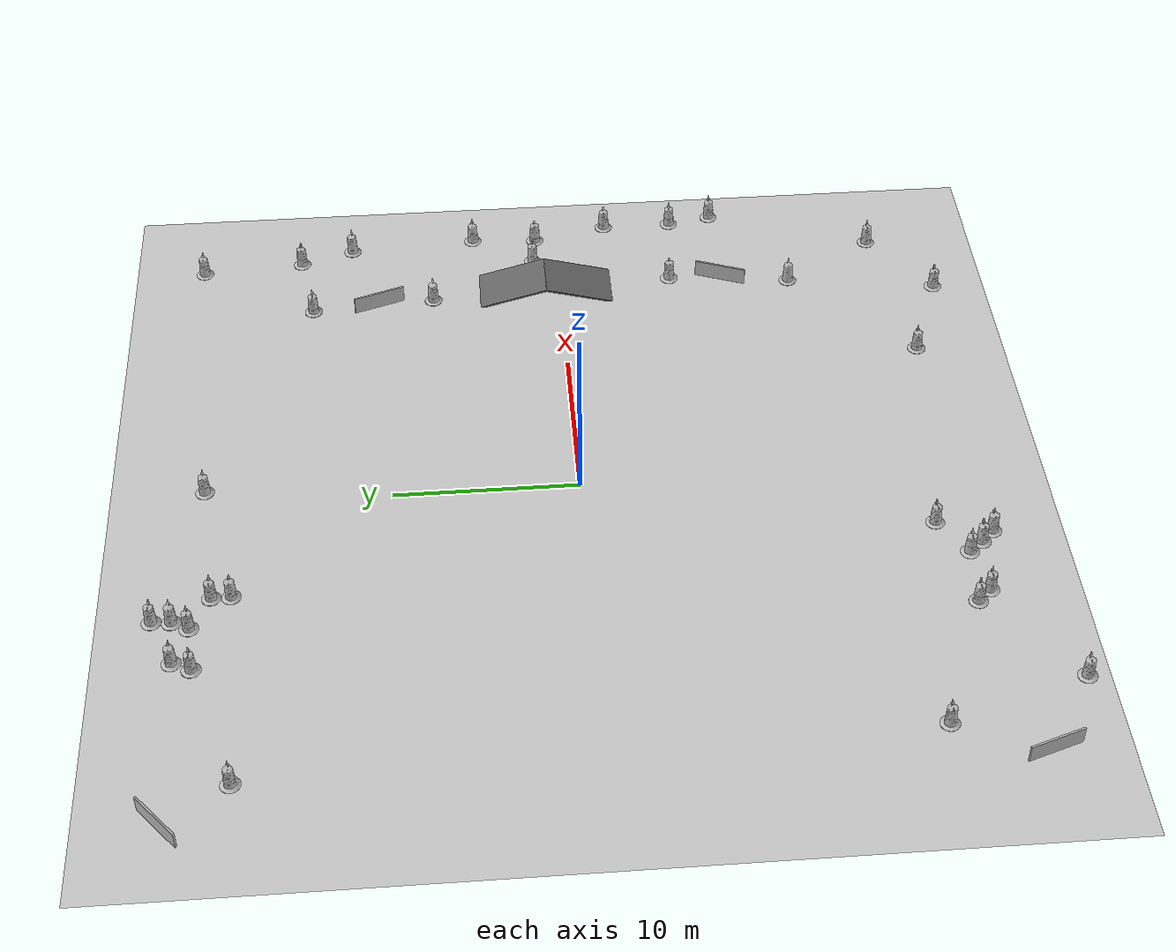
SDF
<sdf version="1.7">
 <world name="default">
  <model name="igvc_basic_ground">
   <static>1</static>
   <link name="link">
    <collision name="collision">
     <geometry><plane><normal>0 0 1</normal><size>50 50</size></plane></geometry>
     <surface><friction><ode><mu>100</mu><mu2>50</mu2></ode></friction></surface>
    </collision>
    <visual name="visual">
     <cast_shadows>0</cast_shadows>
     <geometry><plane><normal>0 0 1</normal><size>50 50</size></plane></geometry>
     <material>
      <script>
       <uri>model://igvc_basic_ground/materials/scripts</uri>
       <uri>model://igvc_basic_ground/materials/textures</uri>
       <name>igvc_pavement/Image</name>
      </script>
     </material>
    </visual>
    <velocity_decay><linear>0</linear><angular>0</angular></velocity_decay>
   </link>
  </model>
  <light name="sun" type="directional">
   <pose>0 0 10 0 -0 0</pose>
   <diffuse>0.8 0.8 0.8 1</diffuse>
   <specular>0.2 0.2 0.2 1</specular>
   <attenuation>
    <range>1000</range>
    <constant>0.9</constant>
    <linear>0.01</linear>
    <quadratic>0.001</quadratic>
   </attenuation>
   <direction>-0.5 0.1 -0.9</direction>
   <spot><inner_angle>0</inner_angle><outer_angle>0</outer_angle><falloff>0</falloff></spot>
  </light>
  <physics name="default_physics" default="0" type="ode">
   <max_step_size>0.001</max_step_size>
   <real_time_factor>1</real_time_factor>
   <real_time_update_rate>1000</real_time_update_rate>
  </physics>
  <scene><ambient>1 1 1 1</ambient><background>0.7 0.7 0.7 1</background><shadows>1</shadows></scene>
  <spherical_coordinates>
   <surface_model>EARTH_WGS84</surface_model>
   <latitude_deg>0</latitude_deg>
   <longitude_deg>0</longitude_deg>
   <elevation>0</elevation>
   <heading_deg>0</heading_deg>
  </spherical_coordinates>
  <model name="Construction Barrel_1">
   <link name="link">
    <inertial>
     <pose>0 0 0.4 0 -0 0</pose>
     <mass>500</mass>
     <inertia><ixx>51.2096</ixx><iyy>51.2096</iyy><izz>25</izz><ixy>0</ixy><ixz>0</ixz><iyz>0</iyz></inertia>
    </inertial>
    <collision name="collision">
     <geometry><mesh><uri>model://construction_barrel/meshes/construction_barrel.dae</uri></mesh></geometry>
    </collision>
    <visual name="visual">
     <geometry><mesh><uri>model://construction_barrel/meshes/construction_barrel.dae</uri></mesh></geometry>
    </visual>
    <velocity_decay><linear>0</linear><angular>0</angular></velocity_decay>
   </link>
   <pose>-17.75 -16.5 -2e-06 7e-06 -4e-06 -0.003021</pose>
   <static>0</static>
  </model>
  <model name="Construction Barrel_2">
   <link name="link">
    <inertial>
     <pose>0 0 0.4 0 -0 0</pose>
     <mass>500</mass>
     <inertia><ixx>51.2096</ixx><iyy>51.2096</iyy><izz>25</izz><ixy>0</ixy><ixz>0</ixz><iyz>0</iyz></inertia>
    </inertial>
    <collision name="collision">
     <geometry><mesh><uri>model://construction_barrel/meshes/construction_barrel.dae</uri></mesh></geometry>
    </collision>
    <visual name="visual">
     <geometry><mesh><uri>model://construction_barrel/meshes/construction_barrel.dae</uri></mesh></geometry>
    </visual>
    <velocity_decay><linear>0</linear><angular>0</angular></velocity_decay>
   </link>
   <pose>-15.3135 -23.8097 -1e-06 -3e-06 -1e-06 -0.002807</pose>
   <static>0</static>
  </model>
  <model name="Construction Barrel_3">
   <link name="link">
    <inertial>
     <pose>0 0 0.4 0 -0 0</pose>
     <mass>500</mass>
     <inertia><ixx>51.2096</ixx><iyy>51.2096</iyy><izz>25</izz><ixy>0</ixy><ixz>0</ixz><iyz>0</iyz></inertia>
    </inertial>
    <collision name="collision">
     <geometry><mesh><uri>model://construction_barrel/meshes/construction_barrel.dae</uri></mesh></geometry>
    </collision>
    <visual name="visual">
     <geometry><mesh><uri>model://construction_barrel/meshes/construction_barrel.dae</uri></mesh></geometry>
    </visual>
    <velocity_decay><linear>0</linear><angular>0</angular></velocity_decay>
   </link>
   <pose>-10 -19.5 -2e-06 7e-06 -4e-06 -0.002806</pose>
   <static>0</static>
  </model>
  <model name="Construction Barrel_4">
   <link name="link">
    <inertial>
     <pose>0 0 0.4 0 -0 0</pose>
     <mass>500</mass>
     <inertia><ixx>51.2096</ixx><iyy>51.2096</iyy><izz>25</izz><ixy>0</ixy><ixz>0</ixz><iyz>0</iyz></inertia>
    </inertial>
    <collision name="collision">
     <geometry><mesh><uri>model://construction_barrel/meshes/construction_barrel.dae</uri></mesh></geometry>
    </collision>
    <visual name="visual">
     <geometry><mesh><uri>model://construction_barrel/meshes/construction_barrel.dae</uri></mesh></geometry>
    </visual>
    <velocity_decay><linear>0</linear><angular>0</angular></velocity_decay>
   </link>
   <pose>-9.25002 -20.25 0 1e-06 1e-06 -0.002833</pose>
   <static>0</static>
  </model>
  <model name="Construction Barrel_5">
   <link name="link">
    <inertial>
     <pose>0 0 0.4 0 -0 0</pose>
     <mass>500</mass>
     <inertia><ixx>51.2096</ixx><iyy>51.2096</iyy><izz>25</izz><ixy>0</ixy><ixz>0</ixz><iyz>0</iyz></inertia>
    </inertial>
    <collision name="collision">
     <geometry><mesh><uri>model://construction_barrel/meshes/construction_barrel.dae</uri></mesh></geometry>
    </collision>
    <visual name="visual">
     <geometry><mesh><uri>model://construction_barrel/meshes/construction_barrel.dae</uri></mesh></geometry>
    </visual>
    <velocity_decay><linear>0</linear><angular>0</angular></velocity_decay>
   </link>
   <pose>-5.84284 -20.5282 -0 0 -0 0.065153</pose>
   <static>0</static>
  </model>
  <model name="Construction Barrel_6">
   <link name="link">
    <inertial>
     <pose>0 0 0.4 0 -0 0</pose>
     <mass>500</mass>
     <inertia><ixx>51.2096</ixx><iyy>51.2096</iyy><izz>25</izz><ixy>0</ixy><ixz>0</ixz><iyz>0</iyz></inertia>
    </inertial>
    <collision name="collision">
     <geometry><mesh><uri>model://construction_barrel/meshes/construction_barrel.dae</uri></mesh></geometry>
    </collision>
    <visual name="visual">
     <geometry><mesh><uri>model://construction_barrel/meshes/construction_barrel.dae</uri></mesh></geometry>
    </visual>
    <velocity_decay><linear>0</linear><angular>0</angular></velocity_decay>
   </link>
   <pose>-5.11319 -21.2361 -0 0 -0 0.028221</pose>
   <static>0</static>
  </model>
  <model name="Construction Barrel_7">
   <link name="link">
    <inertial>
     <pose>0 0 0.4 0 -0 0</pose>
     <mass>500</mass>
     <inertia><ixx>51.2096</ixx><iyy>51.2096</iyy><izz>25</izz><ixy>0</ixy><ixz>0</ixz><iyz>0</iyz></inertia>
    </inertial>
    <collision name="collision">
     <geometry><mesh><uri>model://construction_barrel/meshes/construction_barrel.dae</uri></mesh></geometry>
    </collision>
    <visual name="visual">
     <geometry><mesh><uri>model://construction_barrel/meshes/construction_barrel.dae</uri></mesh></geometry>
    </visual>
    <velocity_decay><linear>0</linear><angular>0</angular></velocity_decay>
   </link>
   <pose>-6.52806 -19.7784 -2e-06 4e-06 7e-06 -0.058084</pose>
   <static>0</static>
  </model>
  <model name="Construction Barrel_9">
   <link name="link">
    <inertial>
     <pose>0 0 0.4 0 -0 0</pose>
     <mass>500</mass>
     <inertia><ixx>51.2096</ixx><iyy>51.2096</iyy><izz>25</izz><ixy>0</ixy><ixz>0</ixz><iyz>0</iyz></inertia>
    </inertial>
    <collision name="collision">
     <geometry><mesh><uri>model://construction_barrel/meshes/construction_barrel.dae</uri></mesh></geometry>
    </collision>
    <visual name="visual">
     <geometry><mesh><uri>model://construction_barrel/meshes/construction_barrel.dae</uri></mesh></geometry>
    </visual>
    <velocity_decay><linear>0</linear><angular>0</angular></velocity_decay>
   </link>
   <pose>-4.25622 -18.3822 -2e-06 8e-06 -4e-06 0.140372</pose>
   <static>0</static>
  </model>
  <model name="Construction Barrel_11">
   <link name="link">
    <inertial>
     <pose>0 0 0.4 0 -0 0</pose>
     <mass>500</mass>
     <inertia><ixx>51.2096</ixx><iyy>51.2096</iyy><izz>25</izz><ixy>0</ixy><ixz>0</ixz><iyz>0</iyz></inertia>
    </inertial>
    <collision name="collision">
     <geometry><mesh><uri>model://construction_barrel/meshes/construction_barrel.dae</uri></mesh></geometry>
    </collision>
    <visual name="visual">
     <geometry><mesh><uri>model://construction_barrel/meshes/construction_barrel.dae</uri></mesh></geometry>
    </visual>
    <velocity_decay><linear>0</linear><angular>0</angular></velocity_decay>
   </link>
   <pose>9.74986 -20 1e-06 3e-06 6e-06 0.038547</pose>
   <static>0</static>
  </model>
  <model name="Construction Barrel_12">
   <link name="link">
    <inertial>
     <pose>0 0 0.4 0 -0 0</pose>
     <mass>500</mass>
     <inertia><ixx>51.2096</ixx><iyy>51.2096</iyy><izz>25</izz><ixy>0</ixy><ixz>0</ixz><iyz>0</iyz></inertia>
    </inertial>
    <collision name="collision">
     <geometry><mesh><uri>model://construction_barrel/meshes/construction_barrel.dae</uri></mesh></geometry>
    </collision>
    <visual name="visual">
     <geometry><mesh><uri>model://construction_barrel/meshes/construction_barrel.dae</uri></mesh></geometry>
    </visual>
    <velocity_decay><linear>0</linear><angular>0</angular></velocity_decay>
   </link>
   <pose>15.25 -22 -1e-06 -3e-06 -1e-06 -0.002228</pose>
   <static>0</static>
  </model>
  <model name="Construction Barrel_13">
   <link name="link">
    <inertial>
     <pose>0 0 0.4 0 -0 0</pose>
     <mass>500</mass>
     <inertia><ixx>51.2096</ixx><iyy>51.2096</iyy><izz>25</izz><ixy>0</ixy><ixz>0</ixz><iyz>0</iyz></inertia>
    </inertial>
    <collision name="collision">
     <geometry><mesh><uri>model://construction_barrel/meshes/construction_barrel.dae</uri></mesh></geometry>
    </collision>
    <visual name="visual">
     <geometry><mesh><uri>model://construction_barrel/meshes/construction_barrel.dae</uri></mesh></geometry>
    </visual>
    <velocity_decay><linear>0</linear><angular>0</angular></velocity_decay>
   </link>
   <pose>19.75 -18.75 -2e-06 7e-06 -2e-06 -0.002154</pose>
   <static>0</static>
  </model>
  <model name="Construction Barrel_14">
   <link name="link">
    <inertial>
     <pose>0 0 0.4 0 -0 0</pose>
     <mass>500</mass>
     <inertia><ixx>51.2096</ixx><iyy>51.2096</iyy><izz>25</izz><ixy>0</ixy><ixz>0</ixz><iyz>0</iyz></inertia>
    </inertial>
    <collision name="collision">
     <geometry><mesh><uri>model://construction_barrel/meshes/construction_barrel.dae</uri></mesh></geometry>
    </collision>
    <visual name="visual">
     <geometry><mesh><uri>model://construction_barrel/meshes/construction_barrel.dae</uri></mesh></geometry>
    </visual>
    <velocity_decay><linear>0</linear><angular>0</angular></velocity_decay>
   </link>
   <pose>16.4999 -13.5008 -0 0 4e-06 -0.046386</pose>
   <static>0</static>
  </model>
  <model name="Construction Barrel_15">
   <link name="link">
    <inertial>
     <pose>0 0 0.4 0 -0 0</pose>
     <mass>500</mass>
     <inertia><ixx>51.2096</ixx><iyy>51.2096</iyy><izz>25</izz><ixy>0</ixy><ixz>0</ixz><iyz>0</iyz></inertia>
    </inertial>
    <collision name="collision">
     <geometry><mesh><uri>model://construction_barrel/meshes/construction_barrel.dae</uri></mesh></geometry>
    </collision>
    <visual name="visual">
     <geometry><mesh><uri>model://construction_barrel/meshes/construction_barrel.dae</uri></mesh></geometry>
    </visual>
    <velocity_decay><linear>0</linear><angular>0</angular></velocity_decay>
   </link>
   <pose>23 -9.50004 -3e-06 0 -1.2e-05 -5.2e-05</pose>
   <static>0</static>
  </model>
  <model name="Construction Barrel_16">
   <link name="link">
    <inertial>
     <pose>0 0 0.4 0 -0 0</pose>
     <mass>500</mass>
     <inertia><ixx>51.2096</ixx><iyy>51.2096</iyy><izz>25</izz><ixy>0</ixy><ixz>0</ixz><iyz>0</iyz></inertia>
    </inertial>
    <collision name="collision">
     <geometry><mesh><uri>model://construction_barrel/meshes/construction_barrel.dae</uri></mesh></geometry>
    </collision>
    <visual name="visual">
     <geometry><mesh><uri>model://construction_barrel/meshes/construction_barrel.dae</uri></mesh></geometry>
    </visual>
    <velocity_decay><linear>0</linear><angular>0</angular></velocity_decay>
   </link>
   <pose>17.25 -6.50004 -2e-06 7e-06 -2e-06 -0.001882</pose>
   <static>0</static>
  </model>
  <model name="Construction Barrel_17">
   <link name="link">
    <inertial>
     <pose>0 0 0.4 0 -0 0</pose>
     <mass>500</mass>
     <inertia><ixx>51.2096</ixx><iyy>51.2096</iyy><izz>25</izz><ixy>0</ixy><ixz>0</ixz><iyz>0</iyz></inertia>
    </inertial>
    <collision name="collision">
     <geometry><mesh><uri>model://construction_barrel/meshes/construction_barrel.dae</uri></mesh></geometry>
    </collision>
    <visual name="visual">
     <geometry><mesh><uri>model://construction_barrel/meshes/construction_barrel.dae</uri></mesh></geometry>
    </visual>
    <velocity_decay><linear>0</linear><angular>0</angular></velocity_decay>
   </link>
   <pose>22.5 -7.00004 -2e-06 7e-06 -4e-06 -0.000948</pose>
   <static>0</static>
  </model>
  <model name="Construction Barrel_18">
   <link name="link">
    <inertial>
     <pose>0 0 0.4 0 -0 0</pose>
     <mass>500</mass>
     <inertia><ixx>51.2096</ixx><iyy>51.2096</iyy><izz>25</izz><ixy>0</ixy><ixz>0</ixz><iyz>0</iyz></inertia>
    </inertial>
    <collision name="collision">
     <geometry><mesh><uri>model://construction_barrel/meshes/construction_barrel.dae</uri></mesh></geometry>
    </collision>
    <visual name="visual">
     <geometry><mesh><uri>model://construction_barrel/meshes/construction_barrel.dae</uri></mesh></geometry>
    </visual>
    <velocity_decay><linear>0</linear><angular>0</angular></velocity_decay>
   </link>
   <pose>22.5 -3.00004 -2e-06 7e-06 -2e-06 -0.001788</pose>
   <static>0</static>
  </model>
  <model name="Construction Barrel_19">
   <link name="link">
    <inertial>
     <pose>0 0 0.4 0 -0 0</pose>
     <mass>500</mass>
     <inertia><ixx>51.2096</ixx><iyy>51.2096</iyy><izz>25</izz><ixy>0</ixy><ixz>0</ixz><iyz>0</iyz></inertia>
    </inertial>
    <collision name="collision">
     <geometry><mesh><uri>model://construction_barrel/meshes/construction_barrel.dae</uri></mesh></geometry>
    </collision>
    <visual name="visual">
     <geometry><mesh><uri>model://construction_barrel/meshes/construction_barrel.dae</uri></mesh></geometry>
    </visual>
    <velocity_decay><linear>0</linear><angular>0</angular></velocity_decay>
   </link>
   <pose>21.5 1.24996 -1e-06 0 5e-06 -5.2e-05</pose>
   <static>0</static>
  </model>
  <model name="Construction Barrel_20">
   <link name="link">
    <inertial>
     <pose>0 0 0.4 0 -0 0</pose>
     <mass>500</mass>
     <inertia><ixx>51.2096</ixx><iyy>51.2096</iyy><izz>25</izz><ixy>0</ixy><ixz>0</ixz><iyz>0</iyz></inertia>
    </inertial>
    <collision name="collision">
     <geometry><mesh><uri>model://construction_barrel/meshes/construction_barrel.dae</uri></mesh></geometry>
    </collision>
    <visual name="visual">
     <geometry><mesh><uri>model://construction_barrel/meshes/construction_barrel.dae</uri></mesh></geometry>
    </visual>
    <velocity_decay><linear>0</linear><angular>0</angular></velocity_decay>
   </link>
   <pose>19.4998 1.50006 -1e-06 3e-06 -2e-06 0.00029</pose>
   <static>0</static>
  </model>
  <model name="Construction Barrel_21">
   <link name="link">
    <inertial>
     <pose>0 0 0.4 0 -0 0</pose>
     <mass>500</mass>
     <inertia><ixx>51.2096</ixx><iyy>51.2096</iyy><izz>25</izz><ixy>0</ixy><ixz>0</ixz><iyz>0</iyz></inertia>
    </inertial>
    <collision name="collision">
     <geometry><mesh><uri>model://construction_barrel/meshes/construction_barrel.dae</uri></mesh></geometry>
    </collision>
    <visual name="visual">
     <geometry><mesh><uri>model://construction_barrel/meshes/construction_barrel.dae</uri></mesh></geometry>
    </visual>
    <velocity_decay><linear>0</linear><angular>0</angular></velocity_decay>
   </link>
   <pose>21.75 4.99996 0 0 0 -0.001366</pose>
   <static>0</static>
  </model>
  <model name="Construction Barrel_22">
   <link name="link">
    <inertial>
     <pose>0 0 0.4 0 -0 0</pose>
     <mass>500</mass>
     <inertia><ixx>51.2096</ixx><iyy>51.2096</iyy><izz>25</izz><ixy>0</ixy><ixz>0</ixz><iyz>0</iyz></inertia>
    </inertial>
    <collision name="collision">
     <geometry><mesh><uri>model://construction_barrel/meshes/construction_barrel.dae</uri></mesh></geometry>
    </collision>
    <visual name="visual">
     <geometry><mesh><uri>model://construction_barrel/meshes/construction_barrel.dae</uri></mesh></geometry>
    </visual>
    <velocity_decay><linear>0</linear><angular>0</angular></velocity_decay>
   </link>
   <pose>21.25 12.25 0 0 0 -0.001312</pose>
   <static>0</static>
  </model>
  <model name="Construction Barrel_23">
   <link name="link">
    <inertial>
     <pose>0 0 0.4 0 -0 0</pose>
     <mass>500</mass>
     <inertia><ixx>51.2096</ixx><iyy>51.2096</iyy><izz>25</izz><ixy>0</ixy><ixz>0</ixz><iyz>0</iyz></inertia>
    </inertial>
    <collision name="collision">
     <geometry><mesh><uri>model://construction_barrel/meshes/construction_barrel.dae</uri></mesh></geometry>
    </collision>
    <visual name="visual">
     <geometry><mesh><uri>model://construction_barrel/meshes/construction_barrel.dae</uri></mesh></geometry>
    </visual>
    <velocity_decay><linear>0</linear><angular>0</angular></velocity_decay>
   </link>
   <pose>16.25 7.49996 -2e-06 7e-06 -2e-06 -0.001154</pose>
   <static>0</static>
  </model>
  <model name="Construction Barrel_24">
   <link name="link">
    <inertial>
     <pose>0 0 0.4 0 -0 0</pose>
     <mass>500</mass>
     <inertia><ixx>51.2096</ixx><iyy>51.2096</iyy><izz>25</izz><ixy>0</ixy><ixz>0</ixz><iyz>0</iyz></inertia>
    </inertial>
    <collision name="collision">
     <geometry><mesh><uri>model://construction_barrel/meshes/construction_barrel.dae</uri></mesh></geometry>
    </collision>
    <visual name="visual">
     <geometry><mesh><uri>model://construction_barrel/meshes/construction_barrel.dae</uri></mesh></geometry>
    </visual>
    <velocity_decay><linear>0</linear><angular>0</angular></velocity_decay>
   </link>
   <pose>20.25 15.25 -2e-06 7e-06 -2e-06 -0.001083</pose>
   <static>0</static>
  </model>
  <model name="Construction Barrel_25">
   <link name="link">
    <inertial>
     <pose>0 0 0.4 0 -0 0</pose>
     <mass>500</mass>
     <inertia><ixx>51.2096</ixx><iyy>51.2096</iyy><izz>25</izz><ixy>0</ixy><ixz>0</ixz><iyz>0</iyz></inertia>
    </inertial>
    <collision name="collision">
     <geometry><mesh><uri>model://construction_barrel/meshes/construction_barrel.dae</uri></mesh></geometry>
    </collision>
    <visual name="visual">
     <geometry><mesh><uri>model://construction_barrel/meshes/construction_barrel.dae</uri></mesh></geometry>
    </visual>
    <velocity_decay><linear>0</linear><angular>0</angular></velocity_decay>
   </link>
   <pose>15.75 14.5 0 1e-06 1e-06 -0.001065</pose>
   <static>0</static>
  </model>
  <model name="Construction Barrel_26">
   <link name="link">
    <inertial>
     <pose>0 0 0.4 0 -0 0</pose>
     <mass>500</mass>
     <inertia><ixx>51.2096</ixx><iyy>51.2096</iyy><izz>25</izz><ixy>0</ixy><ixz>0</ixz><iyz>0</iyz></inertia>
    </inertial>
    <collision name="collision">
     <geometry><mesh><uri>model://construction_barrel/meshes/construction_barrel.dae</uri></mesh></geometry>
    </collision>
    <visual name="visual">
     <geometry><mesh><uri>model://construction_barrel/meshes/construction_barrel.dae</uri></mesh></geometry>
    </visual>
    <velocity_decay><linear>0</linear><angular>0</angular></velocity_decay>
   </link>
   <pose>19.75 21 0 1e-06 1e-06 -0.001038</pose>
   <static>0</static>
  </model>
  <model name="Construction Barrel_28">
   <link name="link">
    <inertial>
     <pose>0 0 0.4 0 -0 0</pose>
     <mass>500</mass>
     <inertia><ixx>51.2096</ixx><iyy>51.2096</iyy><izz>25</izz><ixy>0</ixy><ixz>0</ixz><iyz>0</iyz></inertia>
    </inertial>
    <collision name="collision">
     <geometry><mesh><uri>model://construction_barrel/meshes/construction_barrel.dae</uri></mesh></geometry>
    </collision>
    <visual name="visual">
     <geometry><mesh><uri>model://construction_barrel/meshes/construction_barrel.dae</uri></mesh></geometry>
    </visual>
    <velocity_decay><linear>0</linear><angular>0</angular></velocity_decay>
   </link>
   <pose>-18.75 17.75 -2e-06 7e-06 -2e-06 -0.000869</pose>
   <static>0</static>
  </model>
  <model name="Construction Barrel_29">
   <link name="link">
    <inertial>
     <pose>0 0 0.4 0 -0 0</pose>
     <mass>500</mass>
     <inertia><ixx>51.2096</ixx><iyy>51.2096</iyy><izz>25</izz><ixy>0</ixy><ixz>0</ixz><iyz>0</iyz></inertia>
    </inertial>
    <collision name="collision">
     <geometry><mesh><uri>model://construction_barrel/meshes/construction_barrel.dae</uri></mesh></geometry>
    </collision>
    <visual name="visual">
     <geometry><mesh><uri>model://construction_barrel/meshes/construction_barrel.dae</uri></mesh></geometry>
    </visual>
    <velocity_decay><linear>0</linear><angular>0</angular></velocity_decay>
   </link>
   <pose>-11.5 20 -2e-06 7e-06 -2e-06 -0.000847</pose>
   <static>0</static>
  </model>
  <model name="Construction Barrel_30">
   <link name="link">
    <inertial>
     <pose>0 0 0.4 0 -0 0</pose>
     <mass>500</mass>
     <inertia><ixx>51.2096</ixx><iyy>51.2096</iyy><izz>25</izz><ixy>0</ixy><ixz>0</ixz><iyz>0</iyz></inertia>
    </inertial>
    <collision name="collision">
     <geometry><mesh><uri>model://construction_barrel/meshes/construction_barrel.dae</uri></mesh></geometry>
    </collision>
    <visual name="visual">
     <geometry><mesh><uri>model://construction_barrel/meshes/construction_barrel.dae</uri></mesh></geometry>
    </visual>
    <velocity_decay><linear>0</linear><angular>0</angular></velocity_decay>
   </link>
   <pose>-11 21 -1e-06 -3e-06 -1e-06 -0.001932</pose>
   <static>0</static>
  </model>
  <model name="Construction Barrel_31">
   <link name="link">
    <inertial>
     <pose>0 0 0.4 0 -0 0</pose>
     <mass>500</mass>
     <inertia><ixx>51.2096</ixx><iyy>51.2096</iyy><izz>25</izz><ixy>0</ixy><ixz>0</ixz><iyz>0</iyz></inertia>
    </inertial>
    <collision name="collision">
     <geometry><mesh><uri>model://construction_barrel/meshes/construction_barrel.dae</uri></mesh></geometry>
    </collision>
    <visual name="visual">
     <geometry><mesh><uri>model://construction_barrel/meshes/construction_barrel.dae</uri></mesh></geometry>
    </visual>
    <velocity_decay><linear>0</linear><angular>0</angular></velocity_decay>
   </link>
   <pose>-8.19319 22.1842 0 0 -0 -0.134926</pose>
   <static>0</static>
  </model>
  <model name="Construction Barrel_32">
   <link name="link">
    <inertial>
     <pose>0 0 0.4 0 -0 0</pose>
     <mass>500</mass>
     <inertia><ixx>51.2096</ixx><iyy>51.2096</iyy><izz>25</izz><ixy>0</ixy><ixz>0</ixz><iyz>0</iyz></inertia>
    </inertial>
    <collision name="collision">
     <geometry><mesh><uri>model://construction_barrel/meshes/construction_barrel.dae</uri></mesh></geometry>
    </collision>
    <visual name="visual">
     <geometry><mesh><uri>model://construction_barrel/meshes/construction_barrel.dae</uri></mesh></geometry>
    </visual>
    <velocity_decay><linear>0</linear><angular>0</angular></velocity_decay>
   </link>
   <pose>0.99993 20 -2e-06 0 6e-06 -0.000776</pose>
   <static>0</static>
  </model>
  <model name="Construction Barrel_33">
   <link name="link">
    <inertial>
     <pose>0 0 0.4 0 -0 0</pose>
     <mass>500</mass>
     <inertia><ixx>51.2096</ixx><iyy>51.2096</iyy><izz>25</izz><ixy>0</ixy><ixz>0</ixz><iyz>0</iyz></inertia>
    </inertial>
    <collision name="collision">
     <geometry><mesh><uri>model://construction_barrel/meshes/construction_barrel.dae</uri></mesh></geometry>
    </collision>
    <visual name="visual">
     <geometry><mesh><uri>model://construction_barrel/meshes/construction_barrel.dae</uri></mesh></geometry>
    </visual>
    <velocity_decay><linear>0</linear><angular>0</angular></velocity_decay>
   </link>
   <pose>-6.74392 18.2474 -2e-06 5e-06 -3e-06 0.047432</pose>
   <static>0</static>
  </model>
  <model name="Construction Barrel_34">
   <link name="link">
    <inertial>
     <pose>0 0 0.4 0 -0 0</pose>
     <mass>500</mass>
     <inertia><ixx>51.2096</ixx><iyy>51.2096</iyy><izz>25</izz><ixy>0</ixy><ixz>0</ixz><iyz>0</iyz></inertia>
    </inertial>
    <collision name="collision">
     <geometry><mesh><uri>model://construction_barrel/meshes/construction_barrel.dae</uri></mesh></geometry>
    </collision>
    <visual name="visual">
     <geometry><mesh><uri>model://construction_barrel/meshes/construction_barrel.dae</uri></mesh></geometry>
    </visual>
    <velocity_decay><linear>0</linear><angular>0</angular></velocity_decay>
   </link>
   <pose>-8.27948 21.1722 0 0 -0 0.022472</pose>
   <static>0</static>
  </model>
  <model name="Construction Barrel_35">
   <link name="link">
    <inertial>
     <pose>0 0 0.4 0 -0 0</pose>
     <mass>500</mass>
     <inertia><ixx>51.2096</ixx><iyy>51.2096</iyy><izz>25</izz><ixy>0</ixy><ixz>0</ixz><iyz>0</iyz></inertia>
    </inertial>
    <collision name="collision">
     <geometry><mesh><uri>model://construction_barrel/meshes/construction_barrel.dae</uri></mesh></geometry>
    </collision>
    <visual name="visual">
     <geometry><mesh><uri>model://construction_barrel/meshes/construction_barrel.dae</uri></mesh></geometry>
    </visual>
    <velocity_decay><linear>0</linear><angular>0</angular></velocity_decay>
   </link>
   <pose>-8.76361 20.2672 -1e-06 2e-06 -2e-06 0.036641</pose>
   <static>0</static>
  </model>
  <model name="Construction Barrel_36">
   <link name="link">
    <inertial>
     <pose>0 0 0.4 0 -0 0</pose>
     <mass>500</mass>
     <inertia><ixx>51.2096</ixx><iyy>51.2096</iyy><izz>25</izz><ixy>0</ixy><ixz>0</ixz><iyz>0</iyz></inertia>
    </inertial>
    <collision name="collision">
     <geometry><mesh><uri>model://construction_barrel/meshes/construction_barrel.dae</uri></mesh></geometry>
    </collision>
    <visual name="visual">
     <geometry><mesh><uri>model://construction_barrel/meshes/construction_barrel.dae</uri></mesh></geometry>
    </visual>
    <velocity_decay><linear>0</linear><angular>0</angular></velocity_decay>
   </link>
   <pose>-6.74755 19.2659 0 0 0 -0.046221</pose>
   <static>0</static>
  </model>
  <model name="barricade_1">
   <static>1</static>
   <pose>16 10.65 0.5 0 -0 1.9</pose>
   <link name="link">
    <collision name="collision"><geometry><box><size>3 0.1 1</size></box></geometry></collision>
    <visual name="visual"><geometry><box><size>3 0.1 1</size></box></geometry></visual>
   </link>
  </model>
  <model name="barricade_2">
   <static>1</static>
   <pose>17 -9.5 0.5 0 -0 1.2</pose>
   <link name="link">
    <collision name="collision"><geometry><box><size>3 0.1 1</size></box></geometry></collision>
    <visual name="visual"><geometry><box><size>3 0.1 1</size></box></geometry></visual>
   </link>
  </model>
  <model name="barricade_3">
   <static>1</static>
   <pose>-19.8 -21.17 0.5 0 -0 1.9</pose>
   <link name="link">
    <collision name="collision"><geometry><box><size>3 0.1 1</size></box></geometry></collision>
    <visual name="visual"><geometry><box><size>3 0.1 1</size></box></geometry></visual>
   </link>
  </model>
  <model name="barricade_4">
   <static>1</static>
   <pose>-21 21 0.5 0 -0 0.7</pose>
   <link name="link">
    <collision name="collision"><geometry><box><size>3 0.1 1</size></box></geometry></collision>
    <visual name="visual"><geometry><box><size>3 0.1 1</size></box></geometry></visual>
   </link>
  </model>
  <model name="ramp_up">
   <static>1</static>
   <pose>17 -2 0.15 0.2612 -0 0</pose>
   <link name="link">
    <collision name="collision"><geometry><box><size>3 6 0.1</size></box></geometry></collision>
    <visual name="visual">
     <geometry><box><size>3 6 0.1</size></box></geometry>
     <material>
      <ambient>0.4 0.7 0.6 1</ambient>
      <specular>0.2 0.2 0.2 1</specular>
      <diffuse>0.4 0.4 0.4 1</diffuse>
     </material>
    </visual>
   </link>
  </model>
  <model name="ramp_down">
   <static>1</static>
   <pose>17 3.75 0.15 0.2612 0 3.14</pose>
   <link name="link">
    <collision name="collision"><geometry><box><size>3 6 0.1</size></box></geometry></collision>
    <visual name="visual">
     <geometry><box><size>3 6 0.1</size></box></geometry>
     <material>
      <ambient>0.4 0.7 0.6 1</ambient>
      <specular>0.2 0.2 0.2 1</specular>
      <diffuse>0.4 0.4 0.4 1</diffuse>
     </material>
    </visual>
   </link>
  </model>
  <gravity>0 0 -9.8</gravity>
  <magnetic_field>6e-06 2.3e-05 -4.2e-05</magnetic_field>
  <atmosphere type="adiabatic"/>
  <audio><device>default</device></audio>
 </world>
</sdf>
